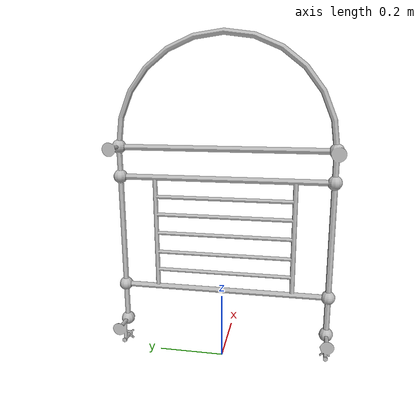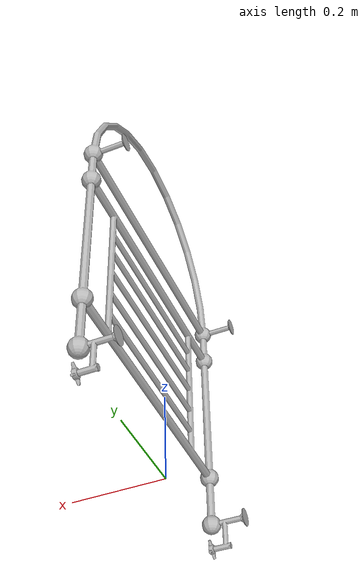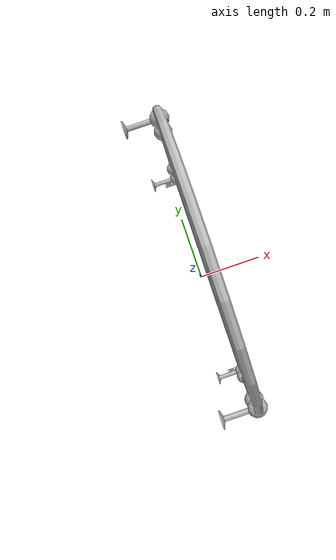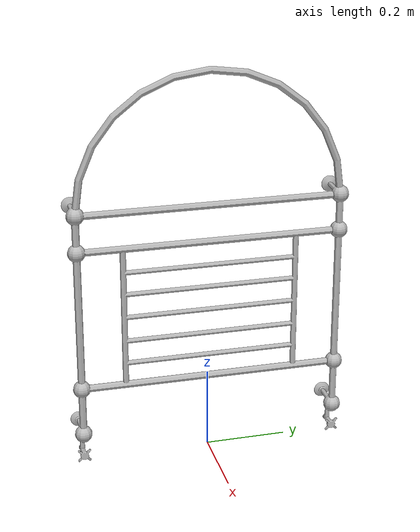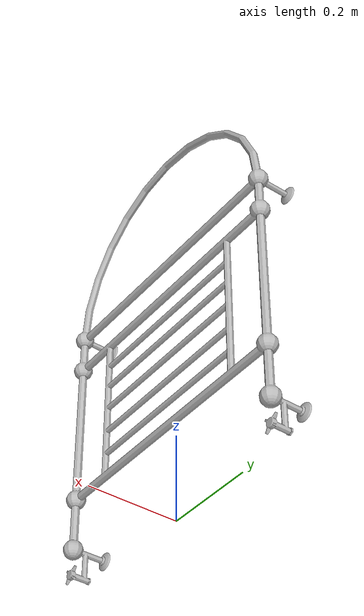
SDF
<?xml version='1.0'?>
<sdf version='1.4'>
  <model name='229'>
    <pose>0 0 0 0 0 0</pose>
    <static>true</static>
    <link name='link'>
      <collision name='collision'>
        <pose>0 0 0 0 0 0</pose>
        <geometry>
          <box>
            <size>0.1 0.680124 2</size>
          </box>
        </geometry>
      </collision>
      <visual name='visual'>
        <pose>0 0 0 0 0 0</pose>
        <geometry>
          <mesh><uri>model://229/229.dae</uri></mesh>
        </geometry>
      </visual>
    </link>
  </model>
</sdf>
